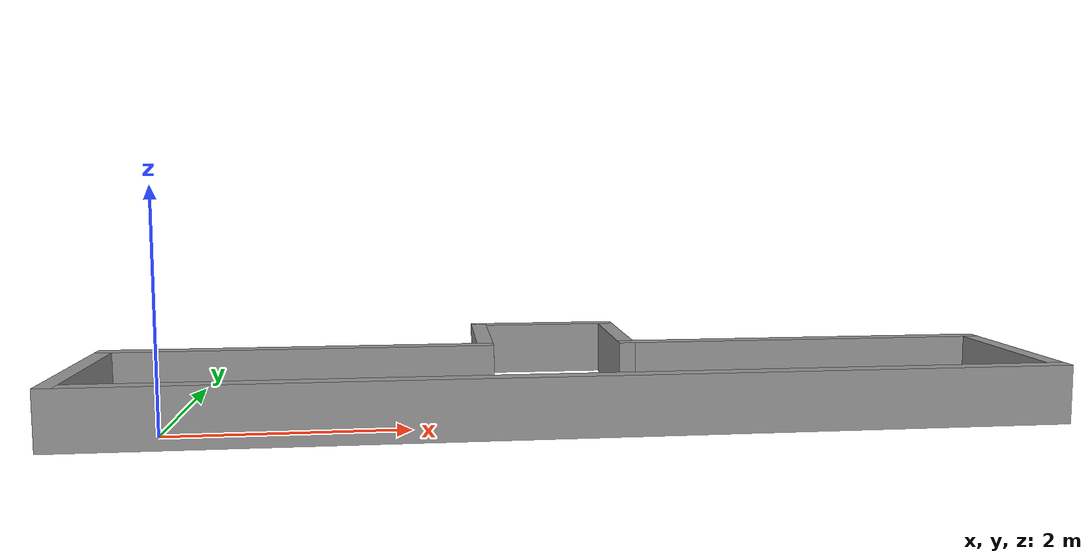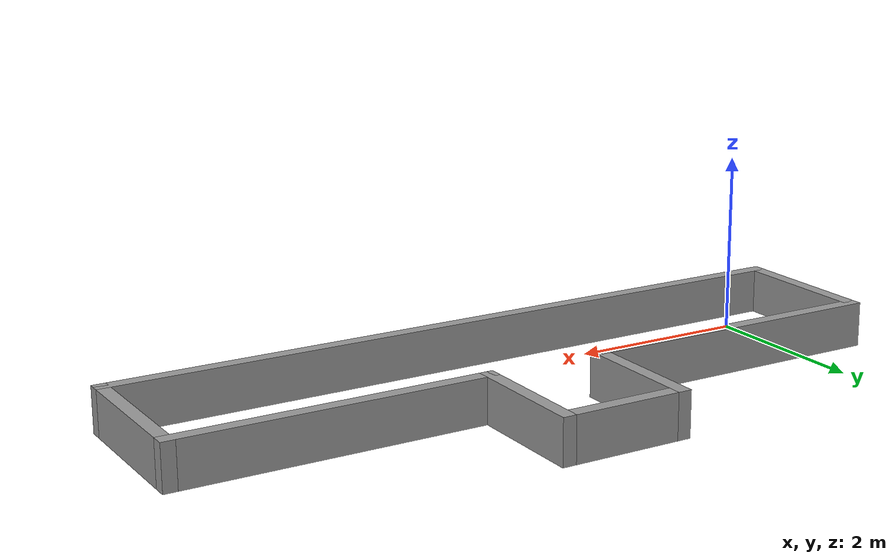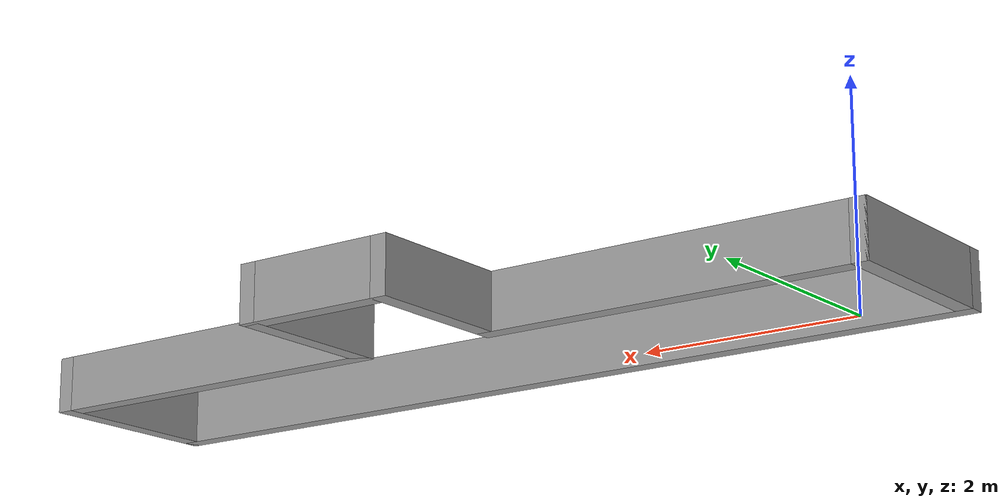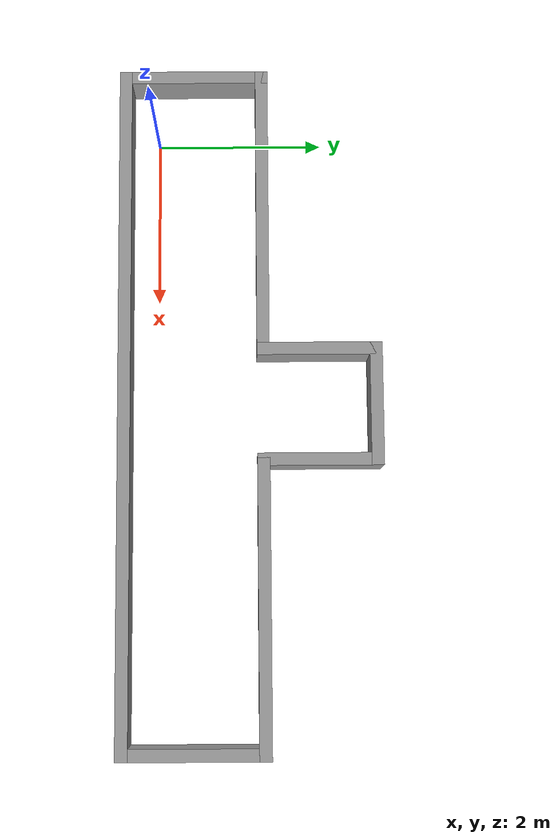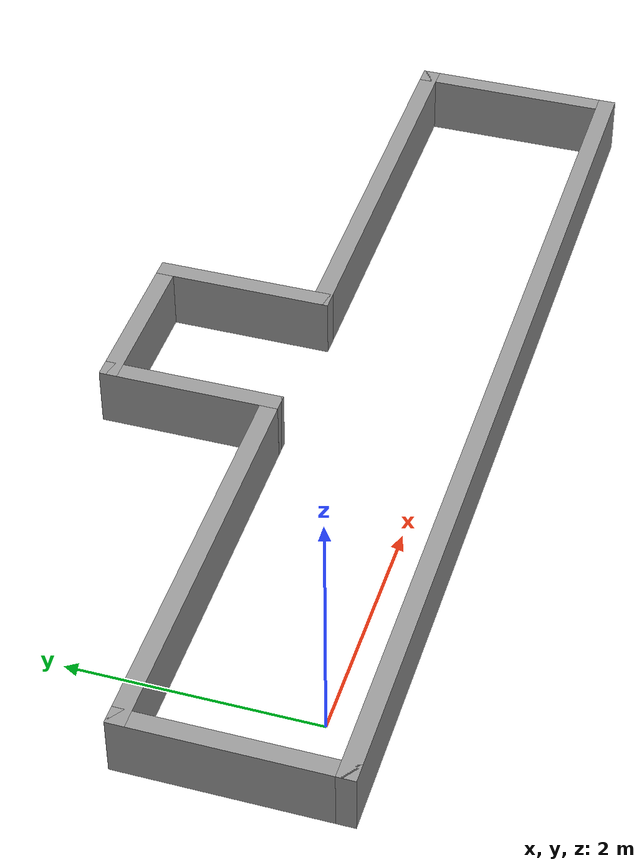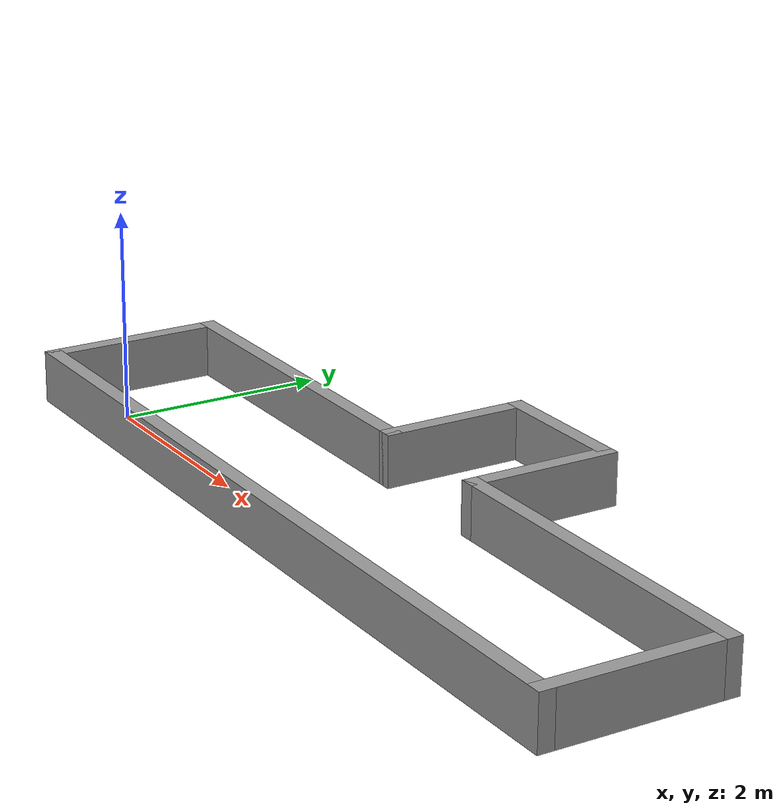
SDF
<?xml version='1.0'?>
<sdf version='1.6'>
  <model name='map5'>
    <pose frame=''>3.335 1.11504 0 0 -0 0</pose>
    <link name='Wall_0'>
      <collision name='Wall_0_Collision'>
        <geometry>
          <box>
            <size>8.28003 0.15 0.5</size>
          </box>
        </geometry>
        <pose frame=''>0 0 0.25 0 -0 0</pose>
      </collision>
      <visual name='Wall_0_Visual'>
        <pose frame=''>0 0 0.25 0 -0 0</pose>
        <geometry>
          <box>
            <size>8.28003 0.15 0.5</size>
          </box>
        </geometry>
        <material>
          <script>
            <uri>file://media/materials/scripts/gazebo.material</uri>
            <name>Gazebo/Grey</name>
          </script>
          <ambient>1 1 1 1</ambient>
        </material>
        <meta>
          <layer>0</layer>
        </meta>
      </visual>
      <pose frame=''>0 -1.50504 0 0 -0 0</pose>
    </link>
    <link name='Wall_10'>
      <collision name='Wall_10_Collision'>
        <geometry>
          <box>
            <size>1.5 0.15 0.5</size>
          </box>
        </geometry>
        <pose frame=''>0 0 0.25 0 -0 0</pose>
      </collision>
      <visual name='Wall_10_Visual'>
        <pose frame=''>0 0 0.25 0 -0 0</pose>
        <geometry>
          <box>
            <size>1.5 0.15 0.5</size>
          </box>
        </geometry>
        <material>
          <script>
            <uri>file://media/materials/scripts/gazebo.material</uri>
            <name>Gazebo/Grey</name>
          </script>
          <ambient>1 1 1 1</ambient>
        </material>
        <meta>
          <layer>0</layer>
        </meta>
      </visual>
      <pose frame=''>-0.665 0.829963 0 0 -0 1.5708</pose>
    </link>
    <link name='Wall_11'>
      <collision name='Wall_11_Collision'>
        <geometry>
          <box>
            <size>1.48 0.15 0.5</size>
          </box>
        </geometry>
        <pose frame=''>0 0 0.25 0 -0 0</pose>
      </collision>
      <visual name='Wall_11_Visual'>
        <pose frame=''>0 0 0.25 0 -0 0</pose>
        <geometry>
          <box>
            <size>1.48 0.15 0.5</size>
          </box>
        </geometry>
        <material>
          <script>
            <uri>file://media/materials/scripts/gazebo.material</uri>
            <name>Gazebo/Grey</name>
          </script>
          <ambient>1 1 1 1</ambient>
        </material>
        <meta>
          <layer>0</layer>
        </meta>
      </visual>
      <pose frame=''>0 1.50496 0 0 -0 0</pose>
    </link>
    <link name='Wall_12'>
      <collision name='Wall_12_Collision'>
        <geometry>
          <box>
            <size>1.50015 0.15 0.5</size>
          </box>
        </geometry>
        <pose frame=''>0 0 0.25 0 -0 0</pose>
      </collision>
      <visual name='Wall_12_Visual'>
        <pose frame=''>0 0 0.25 0 -0 0</pose>
        <geometry>
          <box>
            <size>1.50015 0.15 0.5</size>
          </box>
        </geometry>
        <material>
          <script>
            <uri>file://media/materials/scripts/gazebo.material</uri>
            <name>Gazebo/Grey</name>
          </script>
          <ambient>1 1 1 1</ambient>
        </material>
        <meta>
          <layer>0</layer>
        </meta>
      </visual>
      <pose frame=''>0.665 0.829963 0 0 -0 -1.5708</pose>
    </link>
    <link name='Wall_2'>
      <collision name='Wall_2_Collision'>
        <geometry>
          <box>
            <size>1.81 0.15 0.5</size>
          </box>
        </geometry>
        <pose frame=''>0 0 0.25 0 -0 0</pose>
      </collision>
      <visual name='Wall_2_Visual'>
        <pose frame=''>0 0 0.25 0 -0 0</pose>
        <geometry>
          <box>
            <size>1.81 0.15 0.5</size>
          </box>
        </geometry>
        <material>
          <script>
            <uri>file://media/materials/scripts/gazebo.material</uri>
            <name>Gazebo/Grey</name>
          </script>
          <ambient>1 1 1 1</ambient>
        </material>
        <meta>
          <layer>0</layer>
        </meta>
      </visual>
      <pose frame=''>-4.065 -0.675037 0 0 -0 1.5708</pose>
    </link>
    <link name='Wall_4'>
      <collision name='Wall_4_Collision'>
        <geometry>
          <box>
            <size>1.81 0.15 0.5</size>
          </box>
        </geometry>
        <pose frame=''>0 0 0.25 0 -0 0</pose>
      </collision>
      <visual name='Wall_4_Visual'>
        <pose frame=''>0 0 0.25 0 -0 0</pose>
        <geometry>
          <box>
            <size>1.81 0.15 0.5</size>
          </box>
        </geometry>
        <material>
          <script>
            <uri>file://media/materials/scripts/gazebo.material</uri>
            <name>Gazebo/Grey</name>
          </script>
          <ambient>1 1 1 1</ambient>
        </material>
        <meta>
          <layer>0</layer>
        </meta>
      </visual>
      <pose frame=''>4.065 -0.675037 0 0 -0 1.5708</pose>
    </link>
    <link name='Wall_6'>
      <collision name='Wall_6_Collision'>
        <geometry>
          <box>
            <size>3.55 0.15 0.5</size>
          </box>
        </geometry>
        <pose frame=''>0 0 0.25 0 -0 0</pose>
      </collision>
      <visual name='Wall_6_Visual'>
        <pose frame=''>0 0 0.25 0 -0 0</pose>
        <geometry>
          <box>
            <size>3.55 0.15 0.5</size>
          </box>
        </geometry>
        <material>
          <script>
            <uri>file://media/materials/scripts/gazebo.material</uri>
            <name>Gazebo/Grey</name>
          </script>
          <ambient>1 1 1 1</ambient>
        </material>
        <meta>
          <layer>0</layer>
        </meta>
      </visual>
      <pose frame=''>-2.365 0.154963 0 0 -0 0</pose>
    </link>
    <link name='Wall_8'>
      <collision name='Wall_8_Collision'>
        <geometry>
          <box>
            <size>3.55 0.15 0.5</size>
          </box>
        </geometry>
        <pose frame=''>0 0 0.25 0 -0 0</pose>
      </collision>
      <visual name='Wall_8_Visual'>
        <pose frame=''>0 0 0.25 0 -0 0</pose>
        <geometry>
          <box>
            <size>3.55 0.15 0.5</size>
          </box>
        </geometry>
        <material>
          <script>
            <uri>file://media/materials/scripts/gazebo.material</uri>
            <name>Gazebo/Grey</name>
          </script>
          <ambient>1 1 1 1</ambient>
        </material>
        <meta>
          <layer>0</layer>
        </meta>
      </visual>
      <pose frame=''>2.365 0.154963 0 0 -0 3.14159</pose>
    </link>
    <static>1</static>
  </model>
</sdf>
